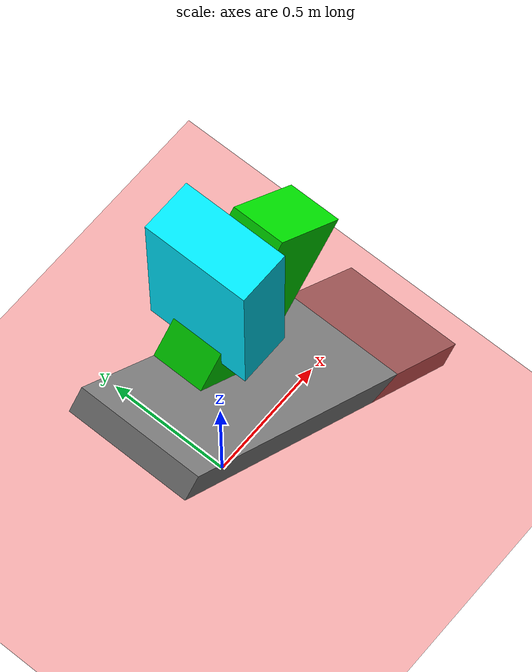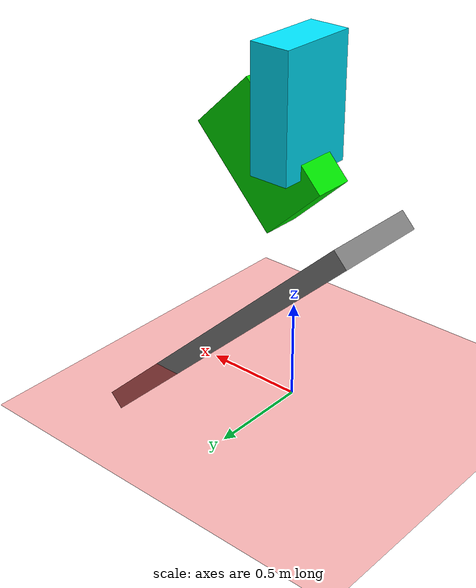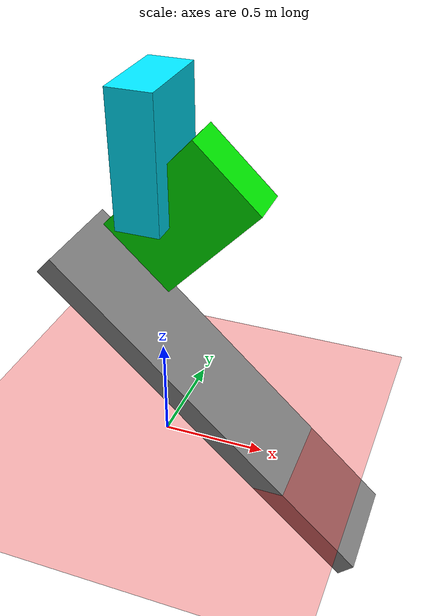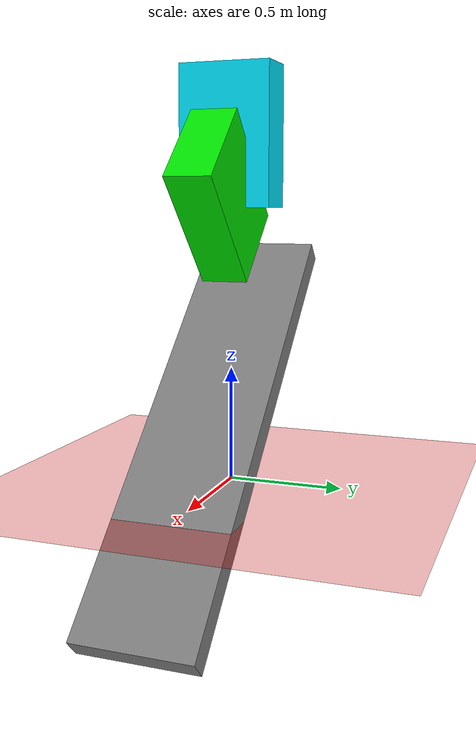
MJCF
<mujoco>
   <compiler 	meshdir="Meshes/"
	    coordinate="local"
		angle="radian"/>
   <option gravity="0 0 0"/>
   <worldbody>
        <light diffuse=".5 .5 .5" pos="0 0 3" dir="0 0 -1"/>
        <geom type="plane" size="1 1 0.1" rgba=".9 0 0 1"/>

        <body name="table" pos="0 0 0" quat="1 0.4 0.4 1">
            <inertial pos="0 0 0" mass="100.0" diaginertia="1.0 1.0 1.0"/>
            <geom name="table_geom" type="box" pos="0 0 0.42" size="0.25 1.0 0.05" contype="1"
            conaffinity="1"/>
             <body pos="0 0.75 1">
                <joint type="slide" axis="0 1 0" damping="-80" />
                <joint type="slide" axis="0 0 1" damping="-10"/>
                 <geom type="box" size=".1 .2 .3" rgba="0 .9 0 1" conaffinity="0" contype="1"/>
            </body>
        </body>
        <body pos="0 0 1.5">
        <site name="cg" pos="0 0 0" size="0.05"/>
        <joint type="free"/>
        <geom type="box" size=".1 .2 .3" rgba="0 .9 1 1" conaffinity="0" contype="1"/>
       </body>
   </worldbody>
<actuator>
    <general site="cg" gear="0 0 1 0 0 0" dynprm="0 0 0" gainprm="0 0 0" biastype="affine" biasprm="-9.81 0 0"/>
</actuator>
</mujoco>
